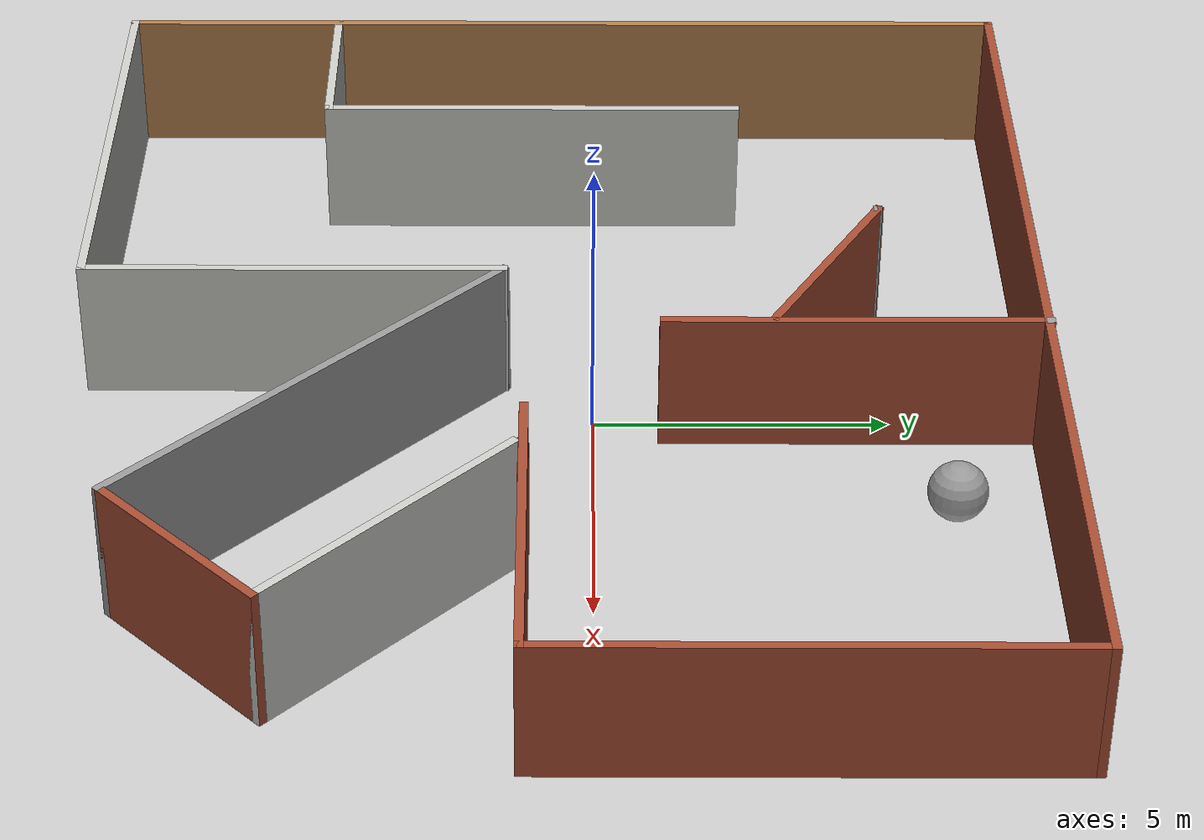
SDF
<sdf version="1.6">
 <world name="default">
  <light name="sun" type="directional">
   <pose>0 0 10 0 -0 0</pose>
   <diffuse>0.8 0.8 0.8 1</diffuse>
   <specular>0.2 0.2 0.2 1</specular>
   <attenuation>
    <range>1000</range>
    <constant>0.9</constant>
    <linear>0.01</linear>
    <quadratic>0.001</quadratic>
   </attenuation>
   <direction>-0.5 0.1 -0.9</direction>
  </light>
  <model name="ground_plane">
   <static>1</static>
   <link name="link">
    <collision name="collision">
     <geometry><plane><normal>0 0 1</normal><size>100 100</size></plane></geometry>
     <surface>
      <contact><collide_bitmask>65535</collide_bitmask></contact>
      <friction><ode><mu>100</mu><mu2>50</mu2></ode></friction>
     </surface>
    </collision>
    <visual name="visual">
     <cast_shadows>0</cast_shadows>
     <geometry><plane><normal>0 0 1</normal><size>100 100</size></plane></geometry>
     <material>
      <script><uri>file://media/materials/scripts/gazebo.material</uri><name>Gazebo/Grey</name></script>
     </material>
    </visual>
   </link>
  </model>
  <gravity>0 0 -9.8</gravity>
  <magnetic_field>6e-06 2.3e-05 -4.2e-05</magnetic_field>
  <atmosphere type="adiabatic"/>
  <physics name="default_physics" default="0" type="ode">
   <max_step_size>0.001</max_step_size>
   <real_time_factor>1</real_time_factor>
   <real_time_update_rate>1000</real_time_update_rate>
  </physics>
  <scene><ambient>0.4 0.4 0.4 1</ambient><background>0.7 0.7 0.7 1</background><shadows>1</shadows></scene>
  <audio><device>default</device></audio>
  <spherical_coordinates>
   <surface_model>EARTH_WGS84</surface_model>
   <latitude_deg>0</latitude_deg>
   <longitude_deg>0</longitude_deg>
   <elevation>0</elevation>
   <heading_deg>0</heading_deg>
  </spherical_coordinates>
  <model name="difficulty_1">
   <pose>-0.340035 -0.5446 0 0 -0 0</pose>
   <link name="Wall_54">
    <collision name="Wall_54_Collision">
     <geometry><box><size>0.16 0.15 2.5</size></box></geometry>
     <pose>0 0 1.25 0 -0 0</pose>
    </collision>
    <visual name="Wall_54_Visual">
     <pose>0 0 1.25 0 -0 0</pose>
     <geometry><box><size>0.16 0.15 2.5</size></box></geometry>
     <material>
      <script><uri>file://media/materials/scripts/gazebo.material</uri><name>Gazebo/Grey</name></script>
      <ambient>1 1 1 1</ambient>
     </material>
     <meta><layer>0</layer></meta>
    </visual>
    <pose>3.205 -0.565424 0 0 -0 0</pose>
   </link>
   <link name="Wall_56">
    <collision name="Wall_56_Collision">
     <geometry><box><size>1.89551 0.15 2.5</size></box></geometry>
     <pose>0 0 1.25 0 -0 0</pose>
    </collision>
    <visual name="Wall_56_Visual">
     <pose>0 0 1.25 0 -0 0</pose>
     <geometry><box><size>1.89551 0.15 2.5</size></box></geometry>
     <material>
      <script><uri>file://media/materials/scripts/gazebo.material</uri><name>Gazebo/Bricks</name></script>
      <ambient>1 1 1 1</ambient>
     </material>
     <meta><layer>0</layer></meta>
    </visual>
    <pose>4.07275 -0.569712 0 0 -0 3.13668</pose>
   </link>
   <link name="Wall_57">
    <collision name="Wall_57_Collision">
     <geometry><box><size>6 0.15 2.5</size></box></geometry>
     <pose>0 0 1.25 0 -0 0</pose>
    </collision>
    <visual name="Wall_57_Visual">
     <pose>0 0 1.25 0 -0 0</pose>
     <geometry><box><size>6 0.15 2.5</size></box></geometry>
     <material>
      <script><uri>file://media/materials/scripts/gazebo.material</uri><name>Gazebo/Bricks</name></script>
      <ambient>1 1 1 1</ambient>
     </material>
     <meta><layer>0</layer></meta>
    </visual>
    <pose>6.125 -0.565424 0 0 -0 0</pose>
   </link>
   <link name="Wall_58">
    <collision name="Wall_58_Collision">
     <geometry><box><size>8.75 0.15 2.5</size></box></geometry>
     <pose>0 0 1.25 0 -0 0</pose>
    </collision>
    <visual name="Wall_58_Visual">
     <pose>0 0 1.25 0 -0 0</pose>
     <geometry><box><size>8.75 0.15 2.5</size></box></geometry>
     <material>
      <script><uri>file://media/materials/scripts/gazebo.material</uri><name>Gazebo/Bricks</name></script>
      <ambient>1 1 1 1</ambient>
     </material>
     <meta><layer>0</layer></meta>
    </visual>
    <pose>9.05 3.73458 0 0 -0 1.5708</pose>
   </link>
   <link name="Wall_59">
    <collision name="Wall_59_Collision">
     <geometry><box><size>18.25 0.15 2.5</size></box></geometry>
     <pose>0 0 1.25 0 -0 0</pose>
    </collision>
    <visual name="Wall_59_Visual">
     <pose>0 0 1.25 0 -0 0</pose>
     <geometry><box><size>18.25 0.15 2.5</size></box></geometry>
     <material>
      <script><uri>file://media/materials/scripts/gazebo.material</uri><name>Gazebo/Bricks</name></script>
      <ambient>1 1 1 1</ambient>
     </material>
     <meta><layer>0</layer></meta>
    </visual>
    <pose>0 8.03458 0 0 -0 3.14159</pose>
   </link>
   <link name="Wall_60">
    <collision name="Wall_60_Collision">
     <geometry><box><size>16.25 0.15 2.5</size></box></geometry>
     <pose>0 0 1.25 0 -0 0</pose>
    </collision>
    <visual name="Wall_60_Visual">
     <pose>0 0 1.25 0 -0 0</pose>
     <geometry><box><size>16.25 0.15 2.5</size></box></geometry>
     <material>
      <script><uri>file://media/materials/scripts/gazebo.material</uri><name>Gazebo/Wood</name></script>
      <ambient>1 1 1 1</ambient>
     </material>
     <meta><layer>0</layer></meta>
    </visual>
    <pose>-9.05 -0.015424 0 0 -0 -1.5708</pose>
   </link>
   <link name="Wall_61">
    <collision name="Wall_61_Collision">
     <geometry><box><size>8.5 0.15 2.5</size></box></geometry>
     <pose>0 0 1.25 0 -0 0</pose>
    </collision>
    <visual name="Wall_61_Visual">
     <pose>0 0 1.25 0 -0 0</pose>
     <geometry><box><size>8.5 0.15 2.5</size></box></geometry>
     <material>
      <script><uri>file://media/materials/scripts/gazebo.material</uri><name>Gazebo/CeilingTiled</name></script>
      <ambient>1 1 1 1</ambient>
     </material>
     <meta><layer>0</layer></meta>
    </visual>
    <pose>-4.875 -8.06542 0 0 -0 0</pose>
   </link>
   <link name="Wall_62">
    <collision name="Wall_62_Collision">
     <geometry><box><size>7.25 0.15 2.5</size></box></geometry>
     <pose>0 0 1.25 0 -0 0</pose>
    </collision>
    <visual name="Wall_62_Visual">
     <pose>0 0 1.25 0 -0 0</pose>
     <geometry><box><size>7.25 0.15 2.5</size></box></geometry>
     <material>
      <script><uri>file://media/materials/scripts/gazebo.material</uri><name>Gazebo/CeilingTiled</name></script>
      <ambient>1 1 1 1</ambient>
     </material>
     <meta><layer>0</layer></meta>
    </visual>
    <pose>-0.7 -4.51542 0 0 -0 1.5708</pose>
   </link>
   <link name="Wall_64">
    <collision name="Wall_64_Collision">
     <geometry><box><size>8.75 0.15 2.5</size></box></geometry>
     <pose>0 0 1.25 0 -0 0</pose>
    </collision>
    <visual name="Wall_64_Visual">
     <pose>0 0 1.25 0 -0 0</pose>
     <geometry><box><size>8.75 0.15 2.5</size></box></geometry>
     <material>
      <script><uri>file://media/materials/scripts/gazebo.material</uri><name>Gazebo/Grey</name></script>
      <ambient>1 1 1 1</ambient>
     </material>
     <meta><layer>0</layer></meta>
    </visual>
    <pose>2.34056 -4.00598 0 0 -0 -0.785398</pose>
   </link>
   <link name="Wall_65">
    <collision name="Wall_65_Collision">
     <geometry><box><size>3.75 0.15 2.5</size></box></geometry>
     <pose>0 0 1.25 0 -0 0</pose>
    </collision>
    <visual name="Wall_65_Visual">
     <pose>0 0 1.25 0 -0 0</pose>
     <geometry><box><size>3.75 0.15 2.5</size></box></geometry>
     <material>
      <script><uri>file://media/materials/scripts/gazebo.material</uri><name>Gazebo/Bricks</name></script>
      <ambient>1 1 1 1</ambient>
     </material>
     <meta><layer>0</layer></meta>
    </visual>
    <pose>6.65391 -5.77375 0 0 -0 0.785398</pose>
   </link>
   <link name="Wall_66">
    <collision name="Wall_66_Collision">
     <geometry><box><size>5.5 0.15 2.5</size></box></geometry>
     <pose>0 0 1.25 0 -0 0</pose>
    </collision>
    <visual name="Wall_66_Visual">
     <pose>0 0 1.25 0 -0 0</pose>
     <geometry><box><size>5.5 0.15 2.5</size></box></geometry>
     <material>
      <script><uri>file://media/materials/scripts/gazebo.material</uri><name>Gazebo/CeilingTiled</name></script>
      <ambient>1 1 1 1</ambient>
     </material>
     <meta><layer>0</layer></meta>
    </visual>
    <pose>6.03519 -2.60945 0 0 -0 2.35619</pose>
   </link>
   <link name="Wall_68">
    <collision name="Wall_68_Collision">
     <geometry><box><size>3.25 0.15 2.5</size></box></geometry>
     <pose>0 0 1.25 0 -0 0</pose>
    </collision>
    <visual name="Wall_68_Visual">
     <pose>0 0 1.25 0 -0 0</pose>
     <geometry><box><size>3.25 0.15 2.5</size></box></geometry>
     <material>
      <script><uri>file://media/materials/scripts/gazebo.material</uri><name>Gazebo/CeilingTiled</name></script>
      <ambient>1 1 1 1</ambient>
     </material>
     <meta><layer>0</layer></meta>
    </visual>
    <pose>-7.49287 -4.21908 0 0 -0 0</pose>
   </link>
   <link name="Wall_69">
    <collision name="Wall_69_Collision">
     <geometry><box><size>7.5 0.15 2.5</size></box></geometry>
     <pose>0 0 1.25 0 -0 0</pose>
    </collision>
    <visual name="Wall_69_Visual">
     <pose>0 0 1.25 0 -0 0</pose>
     <geometry><box><size>7.5 0.15 2.5</size></box></geometry>
     <material>
      <script><uri>file://media/materials/scripts/gazebo.material</uri><name>Gazebo/CeilingTiled</name></script>
      <ambient>1 1 1 1</ambient>
     </material>
     <meta><layer>0</layer></meta>
    </visual>
    <pose>-5.94287 -0.54408 0 0 -0 1.5708</pose>
   </link>
   <link name="Wall_71">
    <collision name="Wall_71_Collision">
     <geometry><box><size>6.5 0.15 2.5</size></box></geometry>
     <pose>0 0 1.25 0 -0 0</pose>
    </collision>
    <visual name="Wall_71_Visual">
     <pose>0 0 1.25 0 -0 0</pose>
     <geometry><box><size>6.5 0.15 2.5</size></box></geometry>
     <material>
      <script><uri>file://media/materials/scripts/gazebo.material</uri><name>Gazebo/Bricks</name></script>
      <ambient>1 1 1 1</ambient>
     </material>
     <meta><layer>0</layer></meta>
    </visual>
    <pose>0.807187 4.89042 0 0 -0 1.5708</pose>
   </link>
   <link name="Wall_72">
    <collision name="Wall_72_Collision">
     <geometry><box><size>0.16 0.15 2.5</size></box></geometry>
     <pose>0 0 1.25 0 -0 0</pose>
    </collision>
    <visual name="Wall_72_Visual">
     <pose>0 0 1.25 0 -0 0</pose>
     <geometry><box><size>0.16 0.15 2.5</size></box></geometry>
     <material>
      <script><uri>file://media/materials/scripts/gazebo.material</uri><name>Gazebo/Grey</name></script>
      <ambient>1 1 1 1</ambient>
     </material>
     <meta><layer>0</layer></meta>
    </visual>
    <pose>0.812187 8.06542 0 0 -0 0</pose>
   </link>
   <link name="Wall_74">
    <collision name="Wall_74_Collision">
     <geometry><box><size>4 0.15 2.5</size></box></geometry>
     <pose>0 0 1.25 0 -0 0</pose>
    </collision>
    <visual name="Wall_74_Visual">
     <pose>0 0 1.25 0 -0 0</pose>
     <geometry><box><size>4 0.15 2.5</size></box></geometry>
     <material>
      <script><uri>file://media/materials/scripts/gazebo.material</uri><name>Gazebo/Bricks</name></script>
      <ambient>1 1 1 1</ambient>
     </material>
     <meta><layer>0</layer></meta>
    </visual>
    <pose>-0.921092 4.51334 0 0 -0 2.61799</pose>
   </link>
   <link name="Wall_75">
    <collision name="Wall_75_Collision">
     <geometry><box><size>0.16 0.15 2.5</size></box></geometry>
     <pose>0 0 1.25 0 -0 0</pose>
    </collision>
    <visual name="Wall_75_Visual">
     <pose>0 0 1.25 0 -0 0</pose>
     <geometry><box><size>0.16 0.15 2.5</size></box></geometry>
     <material>
      <script><uri>file://media/materials/scripts/gazebo.material</uri><name>Gazebo/Grey</name></script>
      <ambient>1 1 1 1</ambient>
     </material>
     <meta><layer>0</layer></meta>
    </visual>
    <pose>-2.58319 5.47584 0 0 -0 0</pose>
   </link>
   <static>1</static>
  </model>
  <model name="unit_sphere">
   <pose>2.4789 5.93973 0.5 0 -0 0</pose>
   <link name="link">
    <inertial>
     <mass>1</mass>
     <inertia><ixx>0.1</ixx><ixy>0</ixy><ixz>0</ixz><iyy>0.1</iyy><iyz>0</iyz><izz>0.1</izz></inertia>
    </inertial>
    <collision name="collision"><geometry><sphere><radius>0.5</radius></sphere></geometry></collision>
    <visual name="visual">
     <geometry><sphere><radius>0.5</radius></sphere></geometry>
     <material>
      <script><name>Gazebo/Grey</name><uri>file://media/materials/scripts/gazebo.material</uri></script>
     </material>
    </visual>
   </link>
  </model>
 </world>
</sdf>
